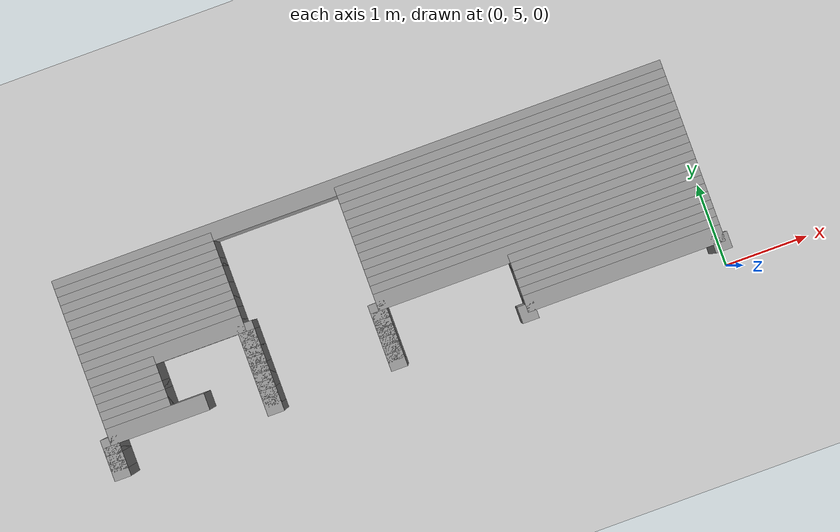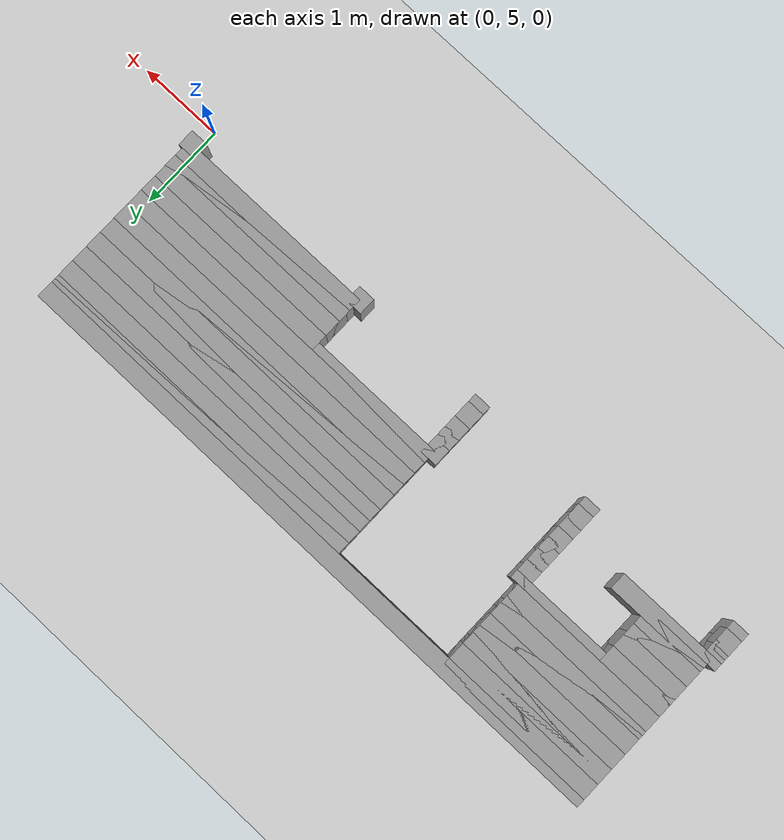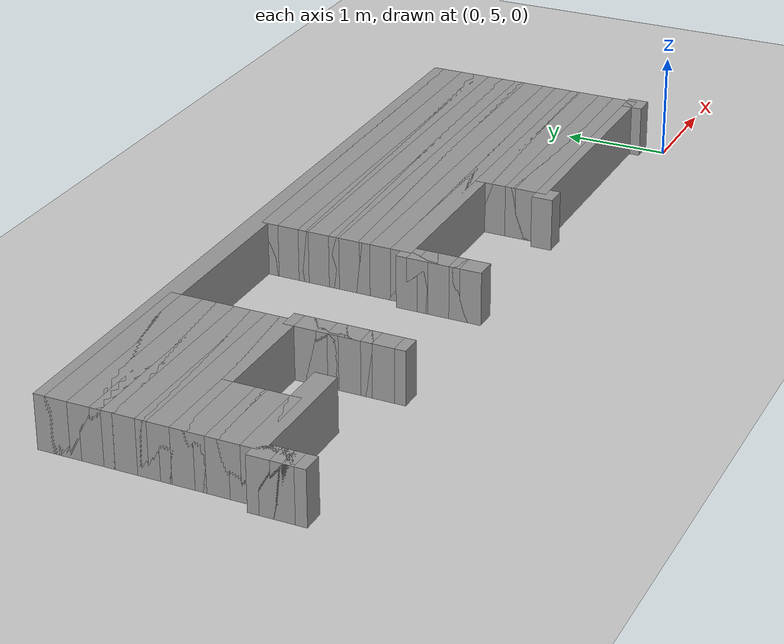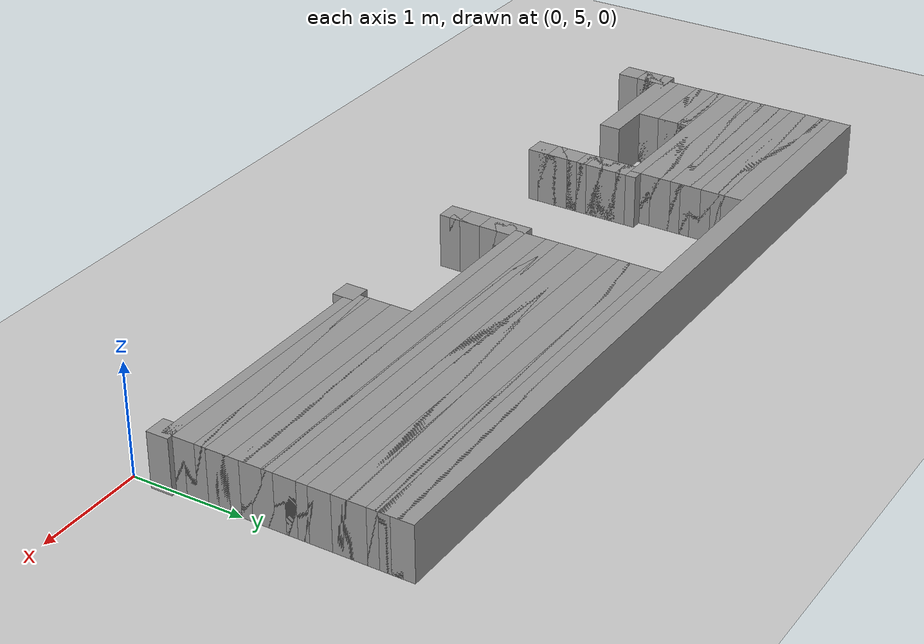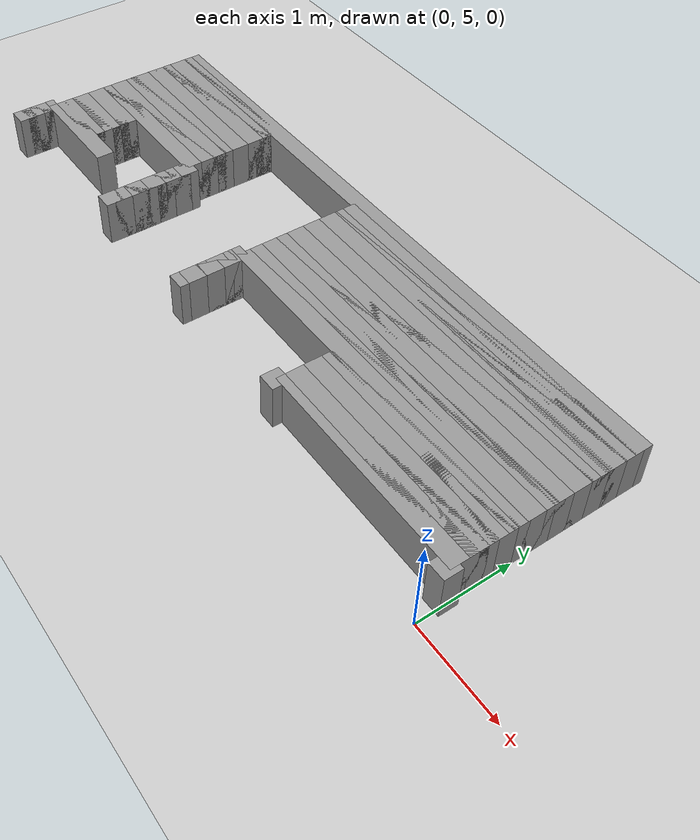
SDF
<sdf version="1.6">
 <world name="GridMap">
  <include><uri>model://sun</uri></include>
  <include><uri>model://ground_plane</uri></include>
  <model name="GridMap">
   <link name="Wall_(74.0,52.0)">
    <collision name="Wall_(74.0,52.0)_Collision">
     <geometry><box><size>0.2 0.2 0.5</size></box></geometry>
     <pose>-7.4 5.2 0.25 0 -0 0</pose>
    </collision>
    <inertial>
     <mass>0.5</mass>
     <pose>0 0.01 0 0 0 0</pose>
     <inertia><ixx>0.004</ixx><ixy>0.001</ixy><ixz>0</ixz><iyy>0.006</iyy><iyz>0</iyz><izz>0.007</izz></inertia>
    </inertial>
    <visual name="Wall_(74.0,52.0)_Visual">
     <geometry><box><size>0.2 0.2 0.5</size></box></geometry>
     <pose>-7.4 5.2 0.25 0 -0 0</pose>
     <material>
      <script><uri>file://media/materials/scripts/gazebo.material</uri><name>Gazebo/Grey</name></script>
      <ambient>1 1 1 1</ambient>
     </material>
     <meta><layer>0</layer></meta>
    </visual>
   </link>
   <link name="Wall_(0.5,53.0)">
    <collision name="Wall_(0.5,53.0)_Collision">
     <geometry><box><size>0.2 0.2 0.5</size></box></geometry>
     <pose>-0.05 5.300000000000001 0.25 0 -0 0</pose>
    </collision>
    <inertial>
     <mass>0.5</mass>
     <pose>0 0.01 0 0 0 0</pose>
     <inertia><ixx>0.004</ixx><ixy>0.001</ixy><ixz>0</ixz><iyy>0.006</iyy><iyz>0</iyz><izz>0.007</izz></inertia>
    </inertial>
    <visual name="Wall_(0.5,53.0)_Visual">
     <geometry><box><size>0.2 0.2 0.5</size></box></geometry>
     <pose>-0.05 5.300000000000001 0.25 0 -0 0</pose>
     <material>
      <script><uri>file://media/materials/scripts/gazebo.material</uri><name>Gazebo/Grey</name></script>
      <ambient>1 1 1 1</ambient>
     </material>
     <meta><layer>0</layer></meta>
    </visual>
   </link>
   <link name="Wall_(24.0,53.0)">
    <collision name="Wall_(24.0,53.0)_Collision">
     <geometry><box><size>0.2 0.2 0.5</size></box></geometry>
     <pose>-2.4000000000000004 5.300000000000001 0.25 0 -0 0</pose>
    </collision>
    <inertial>
     <mass>0.5</mass>
     <pose>0 0.01 0 0 0 0</pose>
     <inertia><ixx>0.004</ixx><ixy>0.001</ixy><ixz>0</ixz><iyy>0.006</iyy><iyz>0</iyz><izz>0.007</izz></inertia>
    </inertial>
    <visual name="Wall_(24.0,53.0)_Visual">
     <geometry><box><size>0.2 0.2 0.5</size></box></geometry>
     <pose>-2.4000000000000004 5.300000000000001 0.25 0 -0 0</pose>
     <material>
      <script><uri>file://media/materials/scripts/gazebo.material</uri><name>Gazebo/Grey</name></script>
      <ambient>1 1 1 1</ambient>
     </material>
     <meta><layer>0</layer></meta>
    </visual>
   </link>
   <link name="Wall_(40.0,53.0)">
    <collision name="Wall_(40.0,53.0)_Collision">
     <geometry><box><size>0.2 0.2 0.5</size></box></geometry>
     <pose>-4.0 5.300000000000001 0.25 0 -0 0</pose>
    </collision>
    <inertial>
     <mass>0.5</mass>
     <pose>0 0.01 0 0 0 0</pose>
     <inertia><ixx>0.004</ixx><ixy>0.001</ixy><ixz>0</ixz><iyy>0.006</iyy><iyz>0</iyz><izz>0.007</izz></inertia>
    </inertial>
    <visual name="Wall_(40.0,53.0)_Visual">
     <geometry><box><size>0.2 0.2 0.5</size></box></geometry>
     <pose>-4.0 5.300000000000001 0.25 0 -0 0</pose>
     <material>
      <script><uri>file://media/materials/scripts/gazebo.material</uri><name>Gazebo/Grey</name></script>
      <ambient>1 1 1 1</ambient>
     </material>
     <meta><layer>0</layer></meta>
    </visual>
   </link>
   <link name="Wall_(55.0,53.0)">
    <collision name="Wall_(55.0,53.0)_Collision">
     <geometry><box><size>0.2 0.2 0.5</size></box></geometry>
     <pose>-5.5 5.300000000000001 0.25 0 -0 0</pose>
    </collision>
    <inertial>
     <mass>0.5</mass>
     <pose>0 0.01 0 0 0 0</pose>
     <inertia><ixx>0.004</ixx><ixy>0.001</ixy><ixz>0</ixz><iyy>0.006</iyy><iyz>0</iyz><izz>0.007</izz></inertia>
    </inertial>
    <visual name="Wall_(55.0,53.0)_Visual">
     <geometry><box><size>0.2 0.2 0.5</size></box></geometry>
     <pose>-5.5 5.300000000000001 0.25 0 -0 0</pose>
     <material>
      <script><uri>file://media/materials/scripts/gazebo.material</uri><name>Gazebo/Grey</name></script>
      <ambient>1 1 1 1</ambient>
     </material>
     <meta><layer>0</layer></meta>
    </visual>
   </link>
   <link name="Wall_(74.0,53.0)">
    <collision name="Wall_(74.0,53.0)_Collision">
     <geometry><box><size>0.2 0.2 0.5</size></box></geometry>
     <pose>-7.4 5.300000000000001 0.25 0 -0 0</pose>
    </collision>
    <inertial>
     <mass>0.5</mass>
     <pose>0 0.01 0 0 0 0</pose>
     <inertia><ixx>0.004</ixx><ixy>0.001</ixy><ixz>0</ixz><iyy>0.006</iyy><iyz>0</iyz><izz>0.007</izz></inertia>
    </inertial>
    <visual name="Wall_(74.0,53.0)_Visual">
     <geometry><box><size>0.2 0.2 0.5</size></box></geometry>
     <pose>-7.4 5.300000000000001 0.25 0 -0 0</pose>
     <material>
      <script><uri>file://media/materials/scripts/gazebo.material</uri><name>Gazebo/Grey</name></script>
      <ambient>1 1 1 1</ambient>
     </material>
     <meta><layer>0</layer></meta>
    </visual>
   </link>
   <link name="Wall_(12.0,54.0)">
    <collision name="Wall_(12.0,54.0)_Collision">
     <geometry><box><size>2.4000000000000004 0.2 0.5</size></box></geometry>
     <pose>-1.2000000000000002 5.4 0.25 0 -0 0</pose>
    </collision>
    <inertial>
     <mass>0.5</mass>
     <pose>0 0.01 0 0 0 0</pose>
     <inertia><ixx>0.004</ixx><ixy>0.001</ixy><ixz>0</ixz><iyy>0.006</iyy><iyz>0</iyz><izz>0.007</izz></inertia>
    </inertial>
    <visual name="Wall_(12.0,54.0)_Visual">
     <geometry><box><size>2.4000000000000004 0.2 0.5</size></box></geometry>
     <pose>-1.2000000000000002 5.4 0.25 0 -0 0</pose>
     <material>
      <script><uri>file://media/materials/scripts/gazebo.material</uri><name>Gazebo/Grey</name></script>
      <ambient>1 1 1 1</ambient>
     </material>
     <meta><layer>0</layer></meta>
    </visual>
   </link>
   <link name="Wall_(40.0,54.0)">
    <collision name="Wall_(40.0,54.0)_Collision">
     <geometry><box><size>0.2 0.2 0.5</size></box></geometry>
     <pose>-4.0 5.4 0.25 0 -0 0</pose>
    </collision>
    <inertial>
     <mass>0.5</mass>
     <pose>0 0.01 0 0 0 0</pose>
     <inertia><ixx>0.004</ixx><ixy>0.001</ixy><ixz>0</ixz><iyy>0.006</iyy><iyz>0</iyz><izz>0.007</izz></inertia>
    </inertial>
    <visual name="Wall_(40.0,54.0)_Visual">
     <geometry><box><size>0.2 0.2 0.5</size></box></geometry>
     <pose>-4.0 5.4 0.25 0 -0 0</pose>
     <material>
      <script><uri>file://media/materials/scripts/gazebo.material</uri><name>Gazebo/Grey</name></script>
      <ambient>1 1 1 1</ambient>
     </material>
     <meta><layer>0</layer></meta>
    </visual>
   </link>
   <link name="Wall_(55.0,54.0)">
    <collision name="Wall_(55.0,54.0)_Collision">
     <geometry><box><size>0.2 0.2 0.5</size></box></geometry>
     <pose>-5.5 5.4 0.25 0 -0 0</pose>
    </collision>
    <inertial>
     <mass>0.5</mass>
     <pose>0 0.01 0 0 0 0</pose>
     <inertia><ixx>0.004</ixx><ixy>0.001</ixy><ixz>0</ixz><iyy>0.006</iyy><iyz>0</iyz><izz>0.007</izz></inertia>
    </inertial>
    <visual name="Wall_(55.0,54.0)_Visual">
     <geometry><box><size>0.2 0.2 0.5</size></box></geometry>
     <pose>-5.5 5.4 0.25 0 -0 0</pose>
     <material>
      <script><uri>file://media/materials/scripts/gazebo.material</uri><name>Gazebo/Grey</name></script>
      <ambient>1 1 1 1</ambient>
     </material>
     <meta><layer>0</layer></meta>
    </visual>
   </link>
   <link name="Wall_(74.0,54.0)">
    <collision name="Wall_(74.0,54.0)_Collision">
     <geometry><box><size>0.2 0.2 0.5</size></box></geometry>
     <pose>-7.4 5.4 0.25 0 -0 0</pose>
    </collision>
    <inertial>
     <mass>0.5</mass>
     <pose>0 0.01 0 0 0 0</pose>
     <inertia><ixx>0.004</ixx><ixy>0.001</ixy><ixz>0</ixz><iyy>0.006</iyy><iyz>0</iyz><izz>0.007</izz></inertia>
    </inertial>
    <visual name="Wall_(74.0,54.0)_Visual">
     <geometry><box><size>0.2 0.2 0.5</size></box></geometry>
     <pose>-7.4 5.4 0.25 0 -0 0</pose>
     <material>
      <script><uri>file://media/materials/scripts/gazebo.material</uri><name>Gazebo/Grey</name></script>
      <ambient>1 1 1 1</ambient>
     </material>
     <meta><layer>0</layer></meta>
    </visual>
   </link>
   <link name="Wall_(12.0,55.0)">
    <collision name="Wall_(12.0,55.0)_Collision">
     <geometry><box><size>2.4000000000000004 0.2 0.5</size></box></geometry>
     <pose>-1.2000000000000002 5.5 0.25 0 -0 0</pose>
    </collision>
    <inertial>
     <mass>0.5</mass>
     <pose>0 0.01 0 0 0 0</pose>
     <inertia><ixx>0.004</ixx><ixy>0.001</ixy><ixz>0</ixz><iyy>0.006</iyy><iyz>0</iyz><izz>0.007</izz></inertia>
    </inertial>
    <visual name="Wall_(12.0,55.0)_Visual">
     <geometry><box><size>2.4000000000000004 0.2 0.5</size></box></geometry>
     <pose>-1.2000000000000002 5.5 0.25 0 -0 0</pose>
     <material>
      <script><uri>file://media/materials/scripts/gazebo.material</uri><name>Gazebo/Grey</name></script>
      <ambient>1 1 1 1</ambient>
     </material>
     <meta><layer>0</layer></meta>
    </visual>
   </link>
   <link name="Wall_(40.0,55.0)">
    <collision name="Wall_(40.0,55.0)_Collision">
     <geometry><box><size>0.2 0.2 0.5</size></box></geometry>
     <pose>-4.0 5.5 0.25 0 -0 0</pose>
    </collision>
    <inertial>
     <mass>0.5</mass>
     <pose>0 0.01 0 0 0 0</pose>
     <inertia><ixx>0.004</ixx><ixy>0.001</ixy><ixz>0</ixz><iyy>0.006</iyy><iyz>0</iyz><izz>0.007</izz></inertia>
    </inertial>
    <visual name="Wall_(40.0,55.0)_Visual">
     <geometry><box><size>0.2 0.2 0.5</size></box></geometry>
     <pose>-4.0 5.5 0.25 0 -0 0</pose>
     <material>
      <script><uri>file://media/materials/scripts/gazebo.material</uri><name>Gazebo/Grey</name></script>
      <ambient>1 1 1 1</ambient>
     </material>
     <meta><layer>0</layer></meta>
    </visual>
   </link>
   <link name="Wall_(55.0,55.0)">
    <collision name="Wall_(55.0,55.0)_Collision">
     <geometry><box><size>0.2 0.2 0.5</size></box></geometry>
     <pose>-5.5 5.5 0.25 0 -0 0</pose>
    </collision>
    <inertial>
     <mass>0.5</mass>
     <pose>0 0.01 0 0 0 0</pose>
     <inertia><ixx>0.004</ixx><ixy>0.001</ixy><ixz>0</ixz><iyy>0.006</iyy><iyz>0</iyz><izz>0.007</izz></inertia>
    </inertial>
    <visual name="Wall_(55.0,55.0)_Visual">
     <geometry><box><size>0.2 0.2 0.5</size></box></geometry>
     <pose>-5.5 5.5 0.25 0 -0 0</pose>
     <material>
      <script><uri>file://media/materials/scripts/gazebo.material</uri><name>Gazebo/Grey</name></script>
      <ambient>1 1 1 1</ambient>
     </material>
     <meta><layer>0</layer></meta>
    </visual>
   </link>
   <link name="Wall_(74.0,55.0)">
    <collision name="Wall_(74.0,55.0)_Collision">
     <geometry><box><size>0.2 0.2 0.5</size></box></geometry>
     <pose>-7.4 5.5 0.25 0 -0 0</pose>
    </collision>
    <inertial>
     <mass>0.5</mass>
     <pose>0 0.01 0 0 0 0</pose>
     <inertia><ixx>0.004</ixx><ixy>0.001</ixy><ixz>0</ixz><iyy>0.006</iyy><iyz>0</iyz><izz>0.007</izz></inertia>
    </inertial>
    <visual name="Wall_(74.0,55.0)_Visual">
     <geometry><box><size>0.2 0.2 0.5</size></box></geometry>
     <pose>-7.4 5.5 0.25 0 -0 0</pose>
     <material>
      <script><uri>file://media/materials/scripts/gazebo.material</uri><name>Gazebo/Grey</name></script>
      <ambient>1 1 1 1</ambient>
     </material>
     <meta><layer>0</layer></meta>
    </visual>
   </link>
   <link name="Wall_(12.0,56.0)">
    <collision name="Wall_(12.0,56.0)_Collision">
     <geometry><box><size>2.4000000000000004 0.2 0.5</size></box></geometry>
     <pose>-1.2000000000000002 5.6000000000000005 0.25 0 -0 0</pose>
    </collision>
    <inertial>
     <mass>0.5</mass>
     <pose>0 0.01 0 0 0 0</pose>
     <inertia><ixx>0.004</ixx><ixy>0.001</ixy><ixz>0</ixz><iyy>0.006</iyy><iyz>0</iyz><izz>0.007</izz></inertia>
    </inertial>
    <visual name="Wall_(12.0,56.0)_Visual">
     <geometry><box><size>2.4000000000000004 0.2 0.5</size></box></geometry>
     <pose>-1.2000000000000002 5.6000000000000005 0.25 0 -0 0</pose>
     <material>
      <script><uri>file://media/materials/scripts/gazebo.material</uri><name>Gazebo/Grey</name></script>
      <ambient>1 1 1 1</ambient>
     </material>
     <meta><layer>0</layer></meta>
    </visual>
   </link>
   <link name="Wall_(40.0,56.0)">
    <collision name="Wall_(40.0,56.0)_Collision">
     <geometry><box><size>0.2 0.2 0.5</size></box></geometry>
     <pose>-4.0 5.6000000000000005 0.25 0 -0 0</pose>
    </collision>
    <inertial>
     <mass>0.5</mass>
     <pose>0 0.01 0 0 0 0</pose>
     <inertia><ixx>0.004</ixx><ixy>0.001</ixy><ixz>0</ixz><iyy>0.006</iyy><iyz>0</iyz><izz>0.007</izz></inertia>
    </inertial>
    <visual name="Wall_(40.0,56.0)_Visual">
     <geometry><box><size>0.2 0.2 0.5</size></box></geometry>
     <pose>-4.0 5.6000000000000005 0.25 0 -0 0</pose>
     <material>
      <script><uri>file://media/materials/scripts/gazebo.material</uri><name>Gazebo/Grey</name></script>
      <ambient>1 1 1 1</ambient>
     </material>
     <meta><layer>0</layer></meta>
    </visual>
   </link>
   <link name="Wall_(55.0,56.0)">
    <collision name="Wall_(55.0,56.0)_Collision">
     <geometry><box><size>0.2 0.2 0.5</size></box></geometry>
     <pose>-5.5 5.6000000000000005 0.25 0 -0 0</pose>
    </collision>
    <inertial>
     <mass>0.5</mass>
     <pose>0 0.01 0 0 0 0</pose>
     <inertia><ixx>0.004</ixx><ixy>0.001</ixy><ixz>0</ixz><iyy>0.006</iyy><iyz>0</iyz><izz>0.007</izz></inertia>
    </inertial>
    <visual name="Wall_(55.0,56.0)_Visual">
     <geometry><box><size>0.2 0.2 0.5</size></box></geometry>
     <pose>-5.5 5.6000000000000005 0.25 0 -0 0</pose>
     <material>
      <script><uri>file://media/materials/scripts/gazebo.material</uri><name>Gazebo/Grey</name></script>
      <ambient>1 1 1 1</ambient>
     </material>
     <meta><layer>0</layer></meta>
    </visual>
   </link>
   <link name="Wall_(68.0,56.0)">
    <collision name="Wall_(68.0,56.0)_Collision">
     <geometry><box><size>1.2000000000000002 0.2 0.5</size></box></geometry>
     <pose>-6.800000000000001 5.6000000000000005 0.25 0 -0 0</pose>
    </collision>
    <inertial>
     <mass>0.5</mass>
     <pose>0 0.01 0 0 0 0</pose>
     <inertia><ixx>0.004</ixx><ixy>0.001</ixy><ixz>0</ixz><iyy>0.006</iyy><iyz>0</iyz><izz>0.007</izz></inertia>
    </inertial>
    <visual name="Wall_(68.0,56.0)_Visual">
     <geometry><box><size>1.2000000000000002 0.2 0.5</size></box></geometry>
     <pose>-6.800000000000001 5.6000000000000005 0.25 0 -0 0</pose>
     <material>
      <script><uri>file://media/materials/scripts/gazebo.material</uri><name>Gazebo/Grey</name></script>
      <ambient>1 1 1 1</ambient>
     </material>
     <meta><layer>0</layer></meta>
    </visual>
   </link>
   <link name="Wall_(12.0,57.0)">
    <collision name="Wall_(12.0,57.0)_Collision">
     <geometry><box><size>2.4000000000000004 0.2 0.5</size></box></geometry>
     <pose>-1.2000000000000002 5.7 0.25 0 -0 0</pose>
    </collision>
    <inertial>
     <mass>0.5</mass>
     <pose>0 0.01 0 0 0 0</pose>
     <inertia><ixx>0.004</ixx><ixy>0.001</ixy><ixz>0</ixz><iyy>0.006</iyy><iyz>0</iyz><izz>0.007</izz></inertia>
    </inertial>
    <visual name="Wall_(12.0,57.0)_Visual">
     <geometry><box><size>2.4000000000000004 0.2 0.5</size></box></geometry>
     <pose>-1.2000000000000002 5.7 0.25 0 -0 0</pose>
     <material>
      <script><uri>file://media/materials/scripts/gazebo.material</uri><name>Gazebo/Grey</name></script>
      <ambient>1 1 1 1</ambient>
     </material>
     <meta><layer>0</layer></meta>
    </visual>
   </link>
   <link name="Wall_(40.0,57.0)">
    <collision name="Wall_(40.0,57.0)_Collision">
     <geometry><box><size>0.2 0.2 0.5</size></box></geometry>
     <pose>-4.0 5.7 0.25 0 -0 0</pose>
    </collision>
    <inertial>
     <mass>0.5</mass>
     <pose>0 0.01 0 0 0 0</pose>
     <inertia><ixx>0.004</ixx><ixy>0.001</ixy><ixz>0</ixz><iyy>0.006</iyy><iyz>0</iyz><izz>0.007</izz></inertia>
    </inertial>
    <visual name="Wall_(40.0,57.0)_Visual">
     <geometry><box><size>0.2 0.2 0.5</size></box></geometry>
     <pose>-4.0 5.7 0.25 0 -0 0</pose>
     <material>
      <script><uri>file://media/materials/scripts/gazebo.material</uri><name>Gazebo/Grey</name></script>
      <ambient>1 1 1 1</ambient>
     </material>
     <meta><layer>0</layer></meta>
    </visual>
   </link>
   <link name="Wall_(55.0,57.0)">
    <collision name="Wall_(55.0,57.0)_Collision">
     <geometry><box><size>0.2 0.2 0.5</size></box></geometry>
     <pose>-5.5 5.7 0.25 0 -0 0</pose>
    </collision>
    <inertial>
     <mass>0.5</mass>
     <pose>0 0.01 0 0 0 0</pose>
     <inertia><ixx>0.004</ixx><ixy>0.001</ixy><ixz>0</ixz><iyy>0.006</iyy><iyz>0</iyz><izz>0.007</izz></inertia>
    </inertial>
    <visual name="Wall_(55.0,57.0)_Visual">
     <geometry><box><size>0.2 0.2 0.5</size></box></geometry>
     <pose>-5.5 5.7 0.25 0 -0 0</pose>
     <material>
      <script><uri>file://media/materials/scripts/gazebo.material</uri><name>Gazebo/Grey</name></script>
      <ambient>1 1 1 1</ambient>
     </material>
     <meta><layer>0</layer></meta>
    </visual>
   </link>
   <link name="Wall_(70.0,57.0)">
    <collision name="Wall_(70.0,57.0)_Collision">
     <geometry><box><size>0.8 0.2 0.5</size></box></geometry>
     <pose>-7.0 5.7 0.25 0 -0 0</pose>
    </collision>
    <inertial>
     <mass>0.5</mass>
     <pose>0 0.01 0 0 0 0</pose>
     <inertia><ixx>0.004</ixx><ixy>0.001</ixy><ixz>0</ixz><iyy>0.006</iyy><iyz>0</iyz><izz>0.007</izz></inertia>
    </inertial>
    <visual name="Wall_(70.0,57.0)_Visual">
     <geometry><box><size>0.8 0.2 0.5</size></box></geometry>
     <pose>-7.0 5.7 0.25 0 -0 0</pose>
     <material>
      <script><uri>file://media/materials/scripts/gazebo.material</uri><name>Gazebo/Grey</name></script>
      <ambient>1 1 1 1</ambient>
     </material>
     <meta><layer>0</layer></meta>
    </visual>
   </link>
   <link name="Wall_(12.0,58.0)">
    <collision name="Wall_(12.0,58.0)_Collision">
     <geometry><box><size>2.4000000000000004 0.2 0.5</size></box></geometry>
     <pose>-1.2000000000000002 5.800000000000001 0.25 0 -0 0</pose>
    </collision>
    <inertial>
     <mass>0.5</mass>
     <pose>0 0.01 0 0 0 0</pose>
     <inertia><ixx>0.004</ixx><ixy>0.001</ixy><ixz>0</ixz><iyy>0.006</iyy><iyz>0</iyz><izz>0.007</izz></inertia>
    </inertial>
    <visual name="Wall_(12.0,58.0)_Visual">
     <geometry><box><size>2.4000000000000004 0.2 0.5</size></box></geometry>
     <pose>-1.2000000000000002 5.800000000000001 0.25 0 -0 0</pose>
     <material>
      <script><uri>file://media/materials/scripts/gazebo.material</uri><name>Gazebo/Grey</name></script>
      <ambient>1 1 1 1</ambient>
     </material>
     <meta><layer>0</layer></meta>
    </visual>
   </link>
   <link name="Wall_(40.0,58.0)">
    <collision name="Wall_(40.0,58.0)_Collision">
     <geometry><box><size>0.2 0.2 0.5</size></box></geometry>
     <pose>-4.0 5.800000000000001 0.25 0 -0 0</pose>
    </collision>
    <inertial>
     <mass>0.5</mass>
     <pose>0 0.01 0 0 0 0</pose>
     <inertia><ixx>0.004</ixx><ixy>0.001</ixy><ixz>0</ixz><iyy>0.006</iyy><iyz>0</iyz><izz>0.007</izz></inertia>
    </inertial>
    <visual name="Wall_(40.0,58.0)_Visual">
     <geometry><box><size>0.2 0.2 0.5</size></box></geometry>
     <pose>-4.0 5.800000000000001 0.25 0 -0 0</pose>
     <material>
      <script><uri>file://media/materials/scripts/gazebo.material</uri><name>Gazebo/Grey</name></script>
      <ambient>1 1 1 1</ambient>
     </material>
     <meta><layer>0</layer></meta>
    </visual>
   </link>
   <link name="Wall_(55.0,58.0)">
    <collision name="Wall_(55.0,58.0)_Collision">
     <geometry><box><size>0.2 0.2 0.5</size></box></geometry>
     <pose>-5.5 5.800000000000001 0.25 0 -0 0</pose>
    </collision>
    <inertial>
     <mass>0.5</mass>
     <pose>0 0.01 0 0 0 0</pose>
     <inertia><ixx>0.004</ixx><ixy>0.001</ixy><ixz>0</ixz><iyy>0.006</iyy><iyz>0</iyz><izz>0.007</izz></inertia>
    </inertial>
    <visual name="Wall_(55.0,58.0)_Visual">
     <geometry><box><size>0.2 0.2 0.5</size></box></geometry>
     <pose>-5.5 5.800000000000001 0.25 0 -0 0</pose>
     <material>
      <script><uri>file://media/materials/scripts/gazebo.material</uri><name>Gazebo/Grey</name></script>
      <ambient>1 1 1 1</ambient>
     </material>
     <meta><layer>0</layer></meta>
    </visual>
   </link>
   <link name="Wall_(70.0,58.0)">
    <collision name="Wall_(70.0,58.0)_Collision">
     <geometry><box><size>0.8 0.2 0.5</size></box></geometry>
     <pose>-7.0 5.800000000000001 0.25 0 -0 0</pose>
    </collision>
    <inertial>
     <mass>0.5</mass>
     <pose>0 0.01 0 0 0 0</pose>
     <inertia><ixx>0.004</ixx><ixy>0.001</ixy><ixz>0</ixz><iyy>0.006</iyy><iyz>0</iyz><izz>0.007</izz></inertia>
    </inertial>
    <visual name="Wall_(70.0,58.0)_Visual">
     <geometry><box><size>0.8 0.2 0.5</size></box></geometry>
     <pose>-7.0 5.800000000000001 0.25 0 -0 0</pose>
     <material>
      <script><uri>file://media/materials/scripts/gazebo.material</uri><name>Gazebo/Grey</name></script>
      <ambient>1 1 1 1</ambient>
     </material>
     <meta><layer>0</layer></meta>
    </visual>
   </link>
   <link name="Wall_(12.0,59.0)">
    <collision name="Wall_(12.0,59.0)_Collision">
     <geometry><box><size>2.4000000000000004 0.2 0.5</size></box></geometry>
     <pose>-1.2000000000000002 5.9 0.25 0 -0 0</pose>
    </collision>
    <inertial>
     <mass>0.5</mass>
     <pose>0 0.01 0 0 0 0</pose>
     <inertia><ixx>0.004</ixx><ixy>0.001</ixy><ixz>0</ixz><iyy>0.006</iyy><iyz>0</iyz><izz>0.007</izz></inertia>
    </inertial>
    <visual name="Wall_(12.0,59.0)_Visual">
     <geometry><box><size>2.4000000000000004 0.2 0.5</size></box></geometry>
     <pose>-1.2000000000000002 5.9 0.25 0 -0 0</pose>
     <material>
      <script><uri>file://media/materials/scripts/gazebo.material</uri><name>Gazebo/Grey</name></script>
      <ambient>1 1 1 1</ambient>
     </material>
     <meta><layer>0</layer></meta>
    </visual>
   </link>
   <link name="Wall_(40.0,59.0)">
    <collision name="Wall_(40.0,59.0)_Collision">
     <geometry><box><size>0.2 0.2 0.5</size></box></geometry>
     <pose>-4.0 5.9 0.25 0 -0 0</pose>
    </collision>
    <inertial>
     <mass>0.5</mass>
     <pose>0 0.01 0 0 0 0</pose>
     <inertia><ixx>0.004</ixx><ixy>0.001</ixy><ixz>0</ixz><iyy>0.006</iyy><iyz>0</iyz><izz>0.007</izz></inertia>
    </inertial>
    <visual name="Wall_(40.0,59.0)_Visual">
     <geometry><box><size>0.2 0.2 0.5</size></box></geometry>
     <pose>-4.0 5.9 0.25 0 -0 0</pose>
     <material>
      <script><uri>file://media/materials/scripts/gazebo.material</uri><name>Gazebo/Grey</name></script>
      <ambient>1 1 1 1</ambient>
     </material>
     <meta><layer>0</layer></meta>
    </visual>
   </link>
   <link name="Wall_(55.0,59.0)">
    <collision name="Wall_(55.0,59.0)_Collision">
     <geometry><box><size>0.2 0.2 0.5</size></box></geometry>
     <pose>-5.5 5.9 0.25 0 -0 0</pose>
    </collision>
    <inertial>
     <mass>0.5</mass>
     <pose>0 0.01 0 0 0 0</pose>
     <inertia><ixx>0.004</ixx><ixy>0.001</ixy><ixz>0</ixz><iyy>0.006</iyy><iyz>0</iyz><izz>0.007</izz></inertia>
    </inertial>
    <visual name="Wall_(55.0,59.0)_Visual">
     <geometry><box><size>0.2 0.2 0.5</size></box></geometry>
     <pose>-5.5 5.9 0.25 0 -0 0</pose>
     <material>
      <script><uri>file://media/materials/scripts/gazebo.material</uri><name>Gazebo/Grey</name></script>
      <ambient>1 1 1 1</ambient>
     </material>
     <meta><layer>0</layer></meta>
    </visual>
   </link>
   <link name="Wall_(70.0,59.0)">
    <collision name="Wall_(70.0,59.0)_Collision">
     <geometry><box><size>0.8 0.2 0.5</size></box></geometry>
     <pose>-7.0 5.9 0.25 0 -0 0</pose>
    </collision>
    <inertial>
     <mass>0.5</mass>
     <pose>0 0.01 0 0 0 0</pose>
     <inertia><ixx>0.004</ixx><ixy>0.001</ixy><ixz>0</ixz><iyy>0.006</iyy><iyz>0</iyz><izz>0.007</izz></inertia>
    </inertial>
    <visual name="Wall_(70.0,59.0)_Visual">
     <geometry><box><size>0.8 0.2 0.5</size></box></geometry>
     <pose>-7.0 5.9 0.25 0 -0 0</pose>
     <material>
      <script><uri>file://media/materials/scripts/gazebo.material</uri><name>Gazebo/Grey</name></script>
      <ambient>1 1 1 1</ambient>
     </material>
     <meta><layer>0</layer></meta>
    </visual>
   </link>
   <link name="Wall_(20.0,60.0)">
    <collision name="Wall_(20.0,60.0)_Collision">
     <geometry><box><size>4.0 0.2 0.5</size></box></geometry>
     <pose>-2.0 6.0 0.25 0 -0 0</pose>
    </collision>
    <inertial>
     <mass>0.5</mass>
     <pose>0 0.01 0 0 0 0</pose>
     <inertia><ixx>0.004</ixx><ixy>0.001</ixy><ixz>0</ixz><iyy>0.006</iyy><iyz>0</iyz><izz>0.007</izz></inertia>
    </inertial>
    <visual name="Wall_(20.0,60.0)_Visual">
     <geometry><box><size>4.0 0.2 0.5</size></box></geometry>
     <pose>-2.0 6.0 0.25 0 -0 0</pose>
     <material>
      <script><uri>file://media/materials/scripts/gazebo.material</uri><name>Gazebo/Grey</name></script>
      <ambient>1 1 1 1</ambient>
     </material>
     <meta><layer>0</layer></meta>
    </visual>
   </link>
   <link name="Wall_(55.0,60.0)">
    <collision name="Wall_(55.0,60.0)_Collision">
     <geometry><box><size>0.2 0.2 0.5</size></box></geometry>
     <pose>-5.5 6.0 0.25 0 -0 0</pose>
    </collision>
    <inertial>
     <mass>0.5</mass>
     <pose>0 0.01 0 0 0 0</pose>
     <inertia><ixx>0.004</ixx><ixy>0.001</ixy><ixz>0</ixz><iyy>0.006</iyy><iyz>0</iyz><izz>0.007</izz></inertia>
    </inertial>
    <visual name="Wall_(55.0,60.0)_Visual">
     <geometry><box><size>0.2 0.2 0.5</size></box></geometry>
     <pose>-5.5 6.0 0.25 0 -0 0</pose>
     <material>
      <script><uri>file://media/materials/scripts/gazebo.material</uri><name>Gazebo/Grey</name></script>
      <ambient>1 1 1 1</ambient>
     </material>
     <meta><layer>0</layer></meta>
    </visual>
   </link>
   <link name="Wall_(70.0,60.0)">
    <collision name="Wall_(70.0,60.0)_Collision">
     <geometry><box><size>0.8 0.2 0.5</size></box></geometry>
     <pose>-7.0 6.0 0.25 0 -0 0</pose>
    </collision>
    <inertial>
     <mass>0.5</mass>
     <pose>0 0.01 0 0 0 0</pose>
     <inertia><ixx>0.004</ixx><ixy>0.001</ixy><ixz>0</ixz><iyy>0.006</iyy><iyz>0</iyz><izz>0.007</izz></inertia>
    </inertial>
    <visual name="Wall_(70.0,60.0)_Visual">
     <geometry><box><size>0.8 0.2 0.5</size></box></geometry>
     <pose>-7.0 6.0 0.25 0 -0 0</pose>
     <material>
      <script><uri>file://media/materials/scripts/gazebo.material</uri><name>Gazebo/Grey</name></script>
      <ambient>1 1 1 1</ambient>
     </material>
     <meta><layer>0</layer></meta>
    </visual>
   </link>
   <link name="Wall_(20.0,61.0)">
    <collision name="Wall_(20.0,61.0)_Collision">
     <geometry><box><size>4.0 0.2 0.5</size></box></geometry>
     <pose>-2.0 6.1000000000000005 0.25 0 -0 0</pose>
    </collision>
    <inertial>
     <mass>0.5</mass>
     <pose>0 0.01 0 0 0 0</pose>
     <inertia><ixx>0.004</ixx><ixy>0.001</ixy><ixz>0</ixz><iyy>0.006</iyy><iyz>0</iyz><izz>0.007</izz></inertia>
    </inertial>
    <visual name="Wall_(20.0,61.0)_Visual">
     <geometry><box><size>4.0 0.2 0.5</size></box></geometry>
     <pose>-2.0 6.1000000000000005 0.25 0 -0 0</pose>
     <material>
      <script><uri>file://media/materials/scripts/gazebo.material</uri><name>Gazebo/Grey</name></script>
      <ambient>1 1 1 1</ambient>
     </material>
     <meta><layer>0</layer></meta>
    </visual>
   </link>
   <link name="Wall_(55.0,61.0)">
    <collision name="Wall_(55.0,61.0)_Collision">
     <geometry><box><size>0.2 0.2 0.5</size></box></geometry>
     <pose>-5.5 6.1000000000000005 0.25 0 -0 0</pose>
    </collision>
    <inertial>
     <mass>0.5</mass>
     <pose>0 0.01 0 0 0 0</pose>
     <inertia><ixx>0.004</ixx><ixy>0.001</ixy><ixz>0</ixz><iyy>0.006</iyy><iyz>0</iyz><izz>0.007</izz></inertia>
    </inertial>
    <visual name="Wall_(55.0,61.0)_Visual">
     <geometry><box><size>0.2 0.2 0.5</size></box></geometry>
     <pose>-5.5 6.1000000000000005 0.25 0 -0 0</pose>
     <material>
      <script><uri>file://media/materials/scripts/gazebo.material</uri><name>Gazebo/Grey</name></script>
      <ambient>1 1 1 1</ambient>
     </material>
     <meta><layer>0</layer></meta>
    </visual>
   </link>
   <link name="Wall_(70.0,61.0)">
    <collision name="Wall_(70.0,61.0)_Collision">
     <geometry><box><size>0.8 0.2 0.5</size></box></geometry>
     <pose>-7.0 6.1000000000000005 0.25 0 -0 0</pose>
    </collision>
    <inertial>
     <mass>0.5</mass>
     <pose>0 0.01 0 0 0 0</pose>
     <inertia><ixx>0.004</ixx><ixy>0.001</ixy><ixz>0</ixz><iyy>0.006</iyy><iyz>0</iyz><izz>0.007</izz></inertia>
    </inertial>
    <visual name="Wall_(70.0,61.0)_Visual">
     <geometry><box><size>0.8 0.2 0.5</size></box></geometry>
     <pose>-7.0 6.1000000000000005 0.25 0 -0 0</pose>
     <material>
      <script><uri>file://media/materials/scripts/gazebo.material</uri><name>Gazebo/Grey</name></script>
      <ambient>1 1 1 1</ambient>
     </material>
     <meta><layer>0</layer></meta>
    </visual>
   </link>
   <link name="Wall_(20.0,62.0)">
    <collision name="Wall_(20.0,62.0)_Collision">
     <geometry><box><size>4.0 0.2 0.5</size></box></geometry>
     <pose>-2.0 6.2 0.25 0 -0 0</pose>
    </collision>
    <inertial>
     <mass>0.5</mass>
     <pose>0 0.01 0 0 0 0</pose>
     <inertia><ixx>0.004</ixx><ixy>0.001</ixy><ixz>0</ixz><iyy>0.006</iyy><iyz>0</iyz><izz>0.007</izz></inertia>
    </inertial>
    <visual name="Wall_(20.0,62.0)_Visual">
     <geometry><box><size>4.0 0.2 0.5</size></box></geometry>
     <pose>-2.0 6.2 0.25 0 -0 0</pose>
     <material>
      <script><uri>file://media/materials/scripts/gazebo.material</uri><name>Gazebo/Grey</name></script>
      <ambient>1 1 1 1</ambient>
     </material>
     <meta><layer>0</layer></meta>
    </visual>
   </link>
   <link name="Wall_(55.0,62.0)">
    <collision name="Wall_(55.0,62.0)_Collision">
     <geometry><box><size>0.2 0.2 0.5</size></box></geometry>
     <pose>-5.5 6.2 0.25 0 -0 0</pose>
    </collision>
    <inertial>
     <mass>0.5</mass>
     <pose>0 0.01 0 0 0 0</pose>
     <inertia><ixx>0.004</ixx><ixy>0.001</ixy><ixz>0</ixz><iyy>0.006</iyy><iyz>0</iyz><izz>0.007</izz></inertia>
    </inertial>
    <visual name="Wall_(55.0,62.0)_Visual">
     <geometry><box><size>0.2 0.2 0.5</size></box></geometry>
     <pose>-5.5 6.2 0.25 0 -0 0</pose>
     <material>
      <script><uri>file://media/materials/scripts/gazebo.material</uri><name>Gazebo/Grey</name></script>
      <ambient>1 1 1 1</ambient>
     </material>
     <meta><layer>0</layer></meta>
    </visual>
   </link>
   <link name="Wall_(70.0,62.0)">
    <collision name="Wall_(70.0,62.0)_Collision">
     <geometry><box><size>0.8 0.2 0.5</size></box></geometry>
     <pose>-7.0 6.2 0.25 0 -0 0</pose>
    </collision>
    <inertial>
     <mass>0.5</mass>
     <pose>0 0.01 0 0 0 0</pose>
     <inertia><ixx>0.004</ixx><ixy>0.001</ixy><ixz>0</ixz><iyy>0.006</iyy><iyz>0</iyz><izz>0.007</izz></inertia>
    </inertial>
    <visual name="Wall_(70.0,62.0)_Visual">
     <geometry><box><size>0.8 0.2 0.5</size></box></geometry>
     <pose>-7.0 6.2 0.25 0 -0 0</pose>
     <material>
      <script><uri>file://media/materials/scripts/gazebo.material</uri><name>Gazebo/Grey</name></script>
      <ambient>1 1 1 1</ambient>
     </material>
     <meta><layer>0</layer></meta>
    </visual>
   </link>
   <link name="Wall_(20.0,63.0)">
    <collision name="Wall_(20.0,63.0)_Collision">
     <geometry><box><size>4.0 0.2 0.5</size></box></geometry>
     <pose>-2.0 6.300000000000001 0.25 0 -0 0</pose>
    </collision>
    <inertial>
     <mass>0.5</mass>
     <pose>0 0.01 0 0 0 0</pose>
     <inertia><ixx>0.004</ixx><ixy>0.001</ixy><ixz>0</ixz><iyy>0.006</iyy><iyz>0</iyz><izz>0.007</izz></inertia>
    </inertial>
    <visual name="Wall_(20.0,63.0)_Visual">
     <geometry><box><size>4.0 0.2 0.5</size></box></geometry>
     <pose>-2.0 6.300000000000001 0.25 0 -0 0</pose>
     <material>
      <script><uri>file://media/materials/scripts/gazebo.material</uri><name>Gazebo/Grey</name></script>
      <ambient>1 1 1 1</ambient>
     </material>
     <meta><layer>0</layer></meta>
    </visual>
   </link>
   <link name="Wall_(64.5,63.0)">
    <collision name="Wall_(64.5,63.0)_Collision">
     <geometry><box><size>1.9000000000000001 0.2 0.5</size></box></geometry>
     <pose>-6.45 6.300000000000001 0.25 0 -0 0</pose>
    </collision>
    <inertial>
     <mass>0.5</mass>
     <pose>0 0.01 0 0 0 0</pose>
     <inertia><ixx>0.004</ixx><ixy>0.001</ixy><ixz>0</ixz><iyy>0.006</iyy><iyz>0</iyz><izz>0.007</izz></inertia>
    </inertial>
    <visual name="Wall_(64.5,63.0)_Visual">
     <geometry><box><size>1.9000000000000001 0.2 0.5</size></box></geometry>
     <pose>-6.45 6.300000000000001 0.25 0 -0 0</pose>
     <material>
      <script><uri>file://media/materials/scripts/gazebo.material</uri><name>Gazebo/Grey</name></script>
      <ambient>1 1 1 1</ambient>
     </material>
     <meta><layer>0</layer></meta>
    </visual>
   </link>
   <link name="Wall_(20.0,64.0)">
    <collision name="Wall_(20.0,64.0)_Collision">
     <geometry><box><size>4.0 0.2 0.5</size></box></geometry>
     <pose>-2.0 6.4 0.25 0 -0 0</pose>
    </collision>
    <inertial>
     <mass>0.5</mass>
     <pose>0 0.01 0 0 0 0</pose>
     <inertia><ixx>0.004</ixx><ixy>0.001</ixy><ixz>0</ixz><iyy>0.006</iyy><iyz>0</iyz><izz>0.007</izz></inertia>
    </inertial>
    <visual name="Wall_(20.0,64.0)_Visual">
     <geometry><box><size>4.0 0.2 0.5</size></box></geometry>
     <pose>-2.0 6.4 0.25 0 -0 0</pose>
     <material>
      <script><uri>file://media/materials/scripts/gazebo.material</uri><name>Gazebo/Grey</name></script>
      <ambient>1 1 1 1</ambient>
     </material>
     <meta><layer>0</layer></meta>
    </visual>
   </link>
   <link name="Wall_(64.5,64.0)">
    <collision name="Wall_(64.5,64.0)_Collision">
     <geometry><box><size>1.9000000000000001 0.2 0.5</size></box></geometry>
     <pose>-6.45 6.4 0.25 0 -0 0</pose>
    </collision>
    <inertial>
     <mass>0.5</mass>
     <pose>0 0.01 0 0 0 0</pose>
     <inertia><ixx>0.004</ixx><ixy>0.001</ixy><ixz>0</ixz><iyy>0.006</iyy><iyz>0</iyz><izz>0.007</izz></inertia>
    </inertial>
    <visual name="Wall_(64.5,64.0)_Visual">
     <geometry><box><size>1.9000000000000001 0.2 0.5</size></box></geometry>
     <pose>-6.45 6.4 0.25 0 -0 0</pose>
     <material>
      <script><uri>file://media/materials/scripts/gazebo.material</uri><name>Gazebo/Grey</name></script>
      <ambient>1 1 1 1</ambient>
     </material>
     <meta><layer>0</layer></meta>
    </visual>
   </link>
   <link name="Wall_(20.0,65.0)">
    <collision name="Wall_(20.0,65.0)_Collision">
     <geometry><box><size>4.0 0.2 0.5</size></box></geometry>
     <pose>-2.0 6.5 0.25 0 -0 0</pose>
    </collision>
    <inertial>
     <mass>0.5</mass>
     <pose>0 0.01 0 0 0 0</pose>
     <inertia><ixx>0.004</ixx><ixy>0.001</ixy><ixz>0</ixz><iyy>0.006</iyy><iyz>0</iyz><izz>0.007</izz></inertia>
    </inertial>
    <visual name="Wall_(20.0,65.0)_Visual">
     <geometry><box><size>4.0 0.2 0.5</size></box></geometry>
     <pose>-2.0 6.5 0.25 0 -0 0</pose>
     <material>
      <script><uri>file://media/materials/scripts/gazebo.material</uri><name>Gazebo/Grey</name></script>
      <ambient>1 1 1 1</ambient>
     </material>
     <meta><layer>0</layer></meta>
    </visual>
   </link>
   <link name="Wall_(64.5,65.0)">
    <collision name="Wall_(64.5,65.0)_Collision">
     <geometry><box><size>1.9000000000000001 0.2 0.5</size></box></geometry>
     <pose>-6.45 6.5 0.25 0 -0 0</pose>
    </collision>
    <inertial>
     <mass>0.5</mass>
     <pose>0 0.01 0 0 0 0</pose>
     <inertia><ixx>0.004</ixx><ixy>0.001</ixy><ixz>0</ixz><iyy>0.006</iyy><iyz>0</iyz><izz>0.007</izz></inertia>
    </inertial>
    <visual name="Wall_(64.5,65.0)_Visual">
     <geometry><box><size>1.9000000000000001 0.2 0.5</size></box></geometry>
     <pose>-6.45 6.5 0.25 0 -0 0</pose>
     <material>
      <script><uri>file://media/materials/scripts/gazebo.material</uri><name>Gazebo/Grey</name></script>
      <ambient>1 1 1 1</ambient>
     </material>
     <meta><layer>0</layer></meta>
    </visual>
   </link>
   <link name="Wall_(20.0,66.0)">
    <collision name="Wall_(20.0,66.0)_Collision">
     <geometry><box><size>4.0 0.2 0.5</size></box></geometry>
     <pose>-2.0 6.6000000000000005 0.25 0 -0 0</pose>
    </collision>
    <inertial>
     <mass>0.5</mass>
     <pose>0 0.01 0 0 0 0</pose>
     <inertia><ixx>0.004</ixx><ixy>0.001</ixy><ixz>0</ixz><iyy>0.006</iyy><iyz>0</iyz><izz>0.007</izz></inertia>
    </inertial>
    <visual name="Wall_(20.0,66.0)_Visual">
     <geometry><box><size>4.0 0.2 0.5</size></box></geometry>
     <pose>-2.0 6.6000000000000005 0.25 0 -0 0</pose>
     <material>
      <script><uri>file://media/materials/scripts/gazebo.material</uri><name>Gazebo/Grey</name></script>
      <ambient>1 1 1 1</ambient>
     </material>
     <meta><layer>0</layer></meta>
    </visual>
   </link>
   <link name="Wall_(64.5,66.0)">
    <collision name="Wall_(64.5,66.0)_Collision">
     <geometry><box><size>1.9000000000000001 0.2 0.5</size></box></geometry>
     <pose>-6.45 6.6000000000000005 0.25 0 -0 0</pose>
    </collision>
    <inertial>
     <mass>0.5</mass>
     <pose>0 0.01 0 0 0 0</pose>
     <inertia><ixx>0.004</ixx><ixy>0.001</ixy><ixz>0</ixz><iyy>0.006</iyy><iyz>0</iyz><izz>0.007</izz></inertia>
    </inertial>
    <visual name="Wall_(64.5,66.0)_Visual">
     <geometry><box><size>1.9000000000000001 0.2 0.5</size></box></geometry>
     <pose>-6.45 6.6000000000000005 0.25 0 -0 0</pose>
     <material>
      <script><uri>file://media/materials/scripts/gazebo.material</uri><name>Gazebo/Grey</name></script>
      <ambient>1 1 1 1</ambient>
     </material>
     <meta><layer>0</layer></meta>
    </visual>
   </link>
   <link name="Wall_(20.0,67.0)">
    <collision name="Wall_(20.0,67.0)_Collision">
     <geometry><box><size>4.0 0.2 0.5</size></box></geometry>
     <pose>-2.0 6.7 0.25 0 -0 0</pose>
    </collision>
    <inertial>
     <mass>0.5</mass>
     <pose>0 0.01 0 0 0 0</pose>
     <inertia><ixx>0.004</ixx><ixy>0.001</ixy><ixz>0</ixz><iyy>0.006</iyy><iyz>0</iyz><izz>0.007</izz></inertia>
    </inertial>
    <visual name="Wall_(20.0,67.0)_Visual">
     <geometry><box><size>4.0 0.2 0.5</size></box></geometry>
     <pose>-2.0 6.7 0.25 0 -0 0</pose>
     <material>
      <script><uri>file://media/materials/scripts/gazebo.material</uri><name>Gazebo/Grey</name></script>
      <ambient>1 1 1 1</ambient>
     </material>
     <meta><layer>0</layer></meta>
    </visual>
   </link>
   <link name="Wall_(64.5,67.0)">
    <collision name="Wall_(64.5,67.0)_Collision">
     <geometry><box><size>1.9000000000000001 0.2 0.5</size></box></geometry>
     <pose>-6.45 6.7 0.25 0 -0 0</pose>
    </collision>
    <inertial>
     <mass>0.5</mass>
     <pose>0 0.01 0 0 0 0</pose>
     <inertia><ixx>0.004</ixx><ixy>0.001</ixy><ixz>0</ixz><iyy>0.006</iyy><iyz>0</iyz><izz>0.007</izz></inertia>
    </inertial>
    <visual name="Wall_(64.5,67.0)_Visual">
     <geometry><box><size>1.9000000000000001 0.2 0.5</size></box></geometry>
     <pose>-6.45 6.7 0.25 0 -0 0</pose>
     <material>
      <script><uri>file://media/materials/scripts/gazebo.material</uri><name>Gazebo/Grey</name></script>
      <ambient>1 1 1 1</ambient>
     </material>
     <meta><layer>0</layer></meta>
    </visual>
   </link>
   <link name="Wall_(20.0,68.0)">
    <collision name="Wall_(20.0,68.0)_Collision">
     <geometry><box><size>4.0 0.2 0.5</size></box></geometry>
     <pose>-2.0 6.800000000000001 0.25 0 -0 0</pose>
    </collision>
    <inertial>
     <mass>0.5</mass>
     <pose>0 0.01 0 0 0 0</pose>
     <inertia><ixx>0.004</ixx><ixy>0.001</ixy><ixz>0</ixz><iyy>0.006</iyy><iyz>0</iyz><izz>0.007</izz></inertia>
    </inertial>
    <visual name="Wall_(20.0,68.0)_Visual">
     <geometry><box><size>4.0 0.2 0.5</size></box></geometry>
     <pose>-2.0 6.800000000000001 0.25 0 -0 0</pose>
     <material>
      <script><uri>file://media/materials/scripts/gazebo.material</uri><name>Gazebo/Grey</name></script>
      <ambient>1 1 1 1</ambient>
     </material>
     <meta><layer>0</layer></meta>
    </visual>
   </link>
   <link name="Wall_(64.5,68.0)">
    <collision name="Wall_(64.5,68.0)_Collision">
     <geometry><box><size>1.9000000000000001 0.2 0.5</size></box></geometry>
     <pose>-6.45 6.800000000000001 0.25 0 -0 0</pose>
    </collision>
    <inertial>
     <mass>0.5</mass>
     <pose>0 0.01 0 0 0 0</pose>
     <inertia><ixx>0.004</ixx><ixy>0.001</ixy><ixz>0</ixz><iyy>0.006</iyy><iyz>0</iyz><izz>0.007</izz></inertia>
    </inertial>
    <visual name="Wall_(64.5,68.0)_Visual">
     <geometry><box><size>1.9000000000000001 0.2 0.5</size></box></geometry>
     <pose>-6.45 6.800000000000001 0.25 0 -0 0</pose>
     <material>
      <script><uri>file://media/materials/scripts/gazebo.material</uri><name>Gazebo/Grey</name></script>
      <ambient>1 1 1 1</ambient>
     </material>
     <meta><layer>0</layer></meta>
    </visual>
   </link>
   <link name="Wall_(20.0,69.0)">
    <collision name="Wall_(20.0,69.0)_Collision">
     <geometry><box><size>4.0 0.2 0.5</size></box></geometry>
     <pose>-2.0 6.9 0.25 0 -0 0</pose>
    </collision>
    <inertial>
     <mass>0.5</mass>
     <pose>0 0.01 0 0 0 0</pose>
     <inertia><ixx>0.004</ixx><ixy>0.001</ixy><ixz>0</ixz><iyy>0.006</iyy><iyz>0</iyz><izz>0.007</izz></inertia>
    </inertial>
    <visual name="Wall_(20.0,69.0)_Visual">
     <geometry><box><size>4.0 0.2 0.5</size></box></geometry>
     <pose>-2.0 6.9 0.25 0 -0 0</pose>
     <material>
      <script><uri>file://media/materials/scripts/gazebo.material</uri><name>Gazebo/Grey</name></script>
      <ambient>1 1 1 1</ambient>
     </material>
     <meta><layer>0</layer></meta>
    </visual>
   </link>
   <link name="Wall_(64.5,69.0)">
    <collision name="Wall_(64.5,69.0)_Collision">
     <geometry><box><size>1.9000000000000001 0.2 0.5</size></box></geometry>
     <pose>-6.45 6.9 0.25 0 -0 0</pose>
    </collision>
    <inertial>
     <mass>0.5</mass>
     <pose>0 0.01 0 0 0 0</pose>
     <inertia><ixx>0.004</ixx><ixy>0.001</ixy><ixz>0</ixz><iyy>0.006</iyy><iyz>0</iyz><izz>0.007</izz></inertia>
    </inertial>
    <visual name="Wall_(64.5,69.0)_Visual">
     <geometry><box><size>1.9000000000000001 0.2 0.5</size></box></geometry>
     <pose>-6.45 6.9 0.25 0 -0 0</pose>
     <material>
      <script><uri>file://media/materials/scripts/gazebo.material</uri><name>Gazebo/Grey</name></script>
      <ambient>1 1 1 1</ambient>
     </material>
     <meta><layer>0</layer></meta>
    </visual>
   </link>
   <link name="Wall_(20.0,70.0)">
    <collision name="Wall_(20.0,70.0)_Collision">
     <geometry><box><size>4.0 0.2 0.5</size></box></geometry>
     <pose>-2.0 7.0 0.25 0 -0 0</pose>
    </collision>
    <inertial>
     <mass>0.5</mass>
     <pose>0 0.01 0 0 0 0</pose>
     <inertia><ixx>0.004</ixx><ixy>0.001</ixy><ixz>0</ixz><iyy>0.006</iyy><iyz>0</iyz><izz>0.007</izz></inertia>
    </inertial>
    <visual name="Wall_(20.0,70.0)_Visual">
     <geometry><box><size>4.0 0.2 0.5</size></box></geometry>
     <pose>-2.0 7.0 0.25 0 -0 0</pose>
     <material>
      <script><uri>file://media/materials/scripts/gazebo.material</uri><name>Gazebo/Grey</name></script>
      <ambient>1 1 1 1</ambient>
     </material>
     <meta><layer>0</layer></meta>
    </visual>
   </link>
   <link name="Wall_(64.5,70.0)">
    <collision name="Wall_(64.5,70.0)_Collision">
     <geometry><box><size>1.9000000000000001 0.2 0.5</size></box></geometry>
     <pose>-6.45 7.0 0.25 0 -0 0</pose>
    </collision>
    <inertial>
     <mass>0.5</mass>
     <pose>0 0.01 0 0 0 0</pose>
     <inertia><ixx>0.004</ixx><ixy>0.001</ixy><ixz>0</ixz><iyy>0.006</iyy><iyz>0</iyz><izz>0.007</izz></inertia>
    </inertial>
    <visual name="Wall_(64.5,70.0)_Visual">
     <geometry><box><size>1.9000000000000001 0.2 0.5</size></box></geometry>
     <pose>-6.45 7.0 0.25 0 -0 0</pose>
     <material>
      <script><uri>file://media/materials/scripts/gazebo.material</uri><name>Gazebo/Grey</name></script>
      <ambient>1 1 1 1</ambient>
     </material>
     <meta><layer>0</layer></meta>
    </visual>
   </link>
   <link name="Wall_(20.0,71.0)">
    <collision name="Wall_(20.0,71.0)_Collision">
     <geometry><box><size>4.0 0.2 0.5</size></box></geometry>
     <pose>-2.0 7.1000000000000005 0.25 0 -0 0</pose>
    </collision>
    <inertial>
     <mass>0.5</mass>
     <pose>0 0.01 0 0 0 0</pose>
     <inertia><ixx>0.004</ixx><ixy>0.001</ixy><ixz>0</ixz><iyy>0.006</iyy><iyz>0</iyz><izz>0.007</izz></inertia>
    </inertial>
    <visual name="Wall_(20.0,71.0)_Visual">
     <geometry><box><size>4.0 0.2 0.5</size></box></geometry>
     <pose>-2.0 7.1000000000000005 0.25 0 -0 0</pose>
     <material>
      <script><uri>file://media/materials/scripts/gazebo.material</uri><name>Gazebo/Grey</name></script>
      <ambient>1 1 1 1</ambient>
     </material>
     <meta><layer>0</layer></meta>
    </visual>
   </link>
   <link name="Wall_(64.5,71.0)">
    <collision name="Wall_(64.5,71.0)_Collision">
     <geometry><box><size>1.9000000000000001 0.2 0.5</size></box></geometry>
     <pose>-6.45 7.1000000000000005 0.25 0 -0 0</pose>
    </collision>
    <inertial>
     <mass>0.5</mass>
     <pose>0 0.01 0 0 0 0</pose>
     <inertia><ixx>0.004</ixx><ixy>0.001</ixy><ixz>0</ixz><iyy>0.006</iyy><iyz>0</iyz><izz>0.007</izz></inertia>
    </inertial>
    <visual name="Wall_(64.5,71.0)_Visual">
     <geometry><box><size>1.9000000000000001 0.2 0.5</size></box></geometry>
     <pose>-6.45 7.1000000000000005 0.25 0 -0 0</pose>
     <material>
      <script><uri>file://media/materials/scripts/gazebo.material</uri><name>Gazebo/Grey</name></script>
      <ambient>1 1 1 1</ambient>
     </material>
     <meta><layer>0</layer></meta>
    </visual>
   </link>
   <link name="Wall_(20.0,72.0)">
    <collision name="Wall_(20.0,72.0)_Collision">
     <geometry><box><size>4.0 0.2 0.5</size></box></geometry>
     <pose>-2.0 7.2 0.25 0 -0 0</pose>
    </collision>
    <inertial>
     <mass>0.5</mass>
     <pose>0 0.01 0 0 0 0</pose>
     <inertia><ixx>0.004</ixx><ixy>0.001</ixy><ixz>0</ixz><iyy>0.006</iyy><iyz>0</iyz><izz>0.007</izz></inertia>
    </inertial>
    <visual name="Wall_(20.0,72.0)_Visual">
     <geometry><box><size>4.0 0.2 0.5</size></box></geometry>
     <pose>-2.0 7.2 0.25 0 -0 0</pose>
     <material>
      <script><uri>file://media/materials/scripts/gazebo.material</uri><name>Gazebo/Grey</name></script>
      <ambient>1 1 1 1</ambient>
     </material>
     <meta><layer>0</layer></meta>
    </visual>
   </link>
   <link name="Wall_(64.5,72.0)">
    <collision name="Wall_(64.5,72.0)_Collision">
     <geometry><box><size>1.9000000000000001 0.2 0.5</size></box></geometry>
     <pose>-6.45 7.2 0.25 0 -0 0</pose>
    </collision>
    <inertial>
     <mass>0.5</mass>
     <pose>0 0.01 0 0 0 0</pose>
     <inertia><ixx>0.004</ixx><ixy>0.001</ixy><ixz>0</ixz><iyy>0.006</iyy><iyz>0</iyz><izz>0.007</izz></inertia>
    </inertial>
    <visual name="Wall_(64.5,72.0)_Visual">
     <geometry><box><size>1.9000000000000001 0.2 0.5</size></box></geometry>
     <pose>-6.45 7.2 0.25 0 -0 0</pose>
     <material>
      <script><uri>file://media/materials/scripts/gazebo.material</uri><name>Gazebo/Grey</name></script>
      <ambient>1 1 1 1</ambient>
     </material>
     <meta><layer>0</layer></meta>
    </visual>
   </link>
   <link name="Wall_(20.0,73.0)">
    <collision name="Wall_(20.0,73.0)_Collision">
     <geometry><box><size>4.0 0.2 0.5</size></box></geometry>
     <pose>-2.0 7.300000000000001 0.25 0 -0 0</pose>
    </collision>
    <inertial>
     <mass>0.5</mass>
     <pose>0 0.01 0 0 0 0</pose>
     <inertia><ixx>0.004</ixx><ixy>0.001</ixy><ixz>0</ixz><iyy>0.006</iyy><iyz>0</iyz><izz>0.007</izz></inertia>
    </inertial>
    <visual name="Wall_(20.0,73.0)_Visual">
     <geometry><box><size>4.0 0.2 0.5</size></box></geometry>
     <pose>-2.0 7.300000000000001 0.25 0 -0 0</pose>
     <material>
      <script><uri>file://media/materials/scripts/gazebo.material</uri><name>Gazebo/Grey</name></script>
      <ambient>1 1 1 1</ambient>
     </material>
     <meta><layer>0</layer></meta>
    </visual>
   </link>
   <link name="Wall_(64.5,73.0)">
    <collision name="Wall_(64.5,73.0)_Collision">
     <geometry><box><size>1.9000000000000001 0.2 0.5</size></box></geometry>
     <pose>-6.45 7.300000000000001 0.25 0 -0 0</pose>
    </collision>
    <inertial>
     <mass>0.5</mass>
     <pose>0 0.01 0 0 0 0</pose>
     <inertia><ixx>0.004</ixx><ixy>0.001</ixy><ixz>0</ixz><iyy>0.006</iyy><iyz>0</iyz><izz>0.007</izz></inertia>
    </inertial>
    <visual name="Wall_(64.5,73.0)_Visual">
     <geometry><box><size>1.9000000000000001 0.2 0.5</size></box></geometry>
     <pose>-6.45 7.300000000000001 0.25 0 -0 0</pose>
     <material>
      <script><uri>file://media/materials/scripts/gazebo.material</uri><name>Gazebo/Grey</name></script>
      <ambient>1 1 1 1</ambient>
     </material>
     <meta><layer>0</layer></meta>
    </visual>
   </link>
   <link name="Wall_(37.0,74.0)">
    <collision name="Wall_(37.0,74.0)_Collision">
     <geometry><box><size>7.4 0.2 0.5</size></box></geometry>
     <pose>-3.7 7.4 0.25 0 -0 0</pose>
    </collision>
    <inertial>
     <mass>0.5</mass>
     <pose>0 0.01 0 0 0 0</pose>
     <inertia><ixx>0.004</ixx><ixy>0.001</ixy><ixz>0</ixz><iyy>0.006</iyy><iyz>0</iyz><izz>0.007</izz></inertia>
    </inertial>
    <visual name="Wall_(37.0,74.0)_Visual">
     <geometry><box><size>7.4 0.2 0.5</size></box></geometry>
     <pose>-3.7 7.4 0.25 0 -0 0</pose>
     <material>
      <script><uri>file://media/materials/scripts/gazebo.material</uri><name>Gazebo/Grey</name></script>
      <ambient>1 1 1 1</ambient>
     </material>
     <meta><layer>0</layer></meta>
    </visual>
   </link>
   <static>1</static>
  </model>
 </world>
</sdf>
